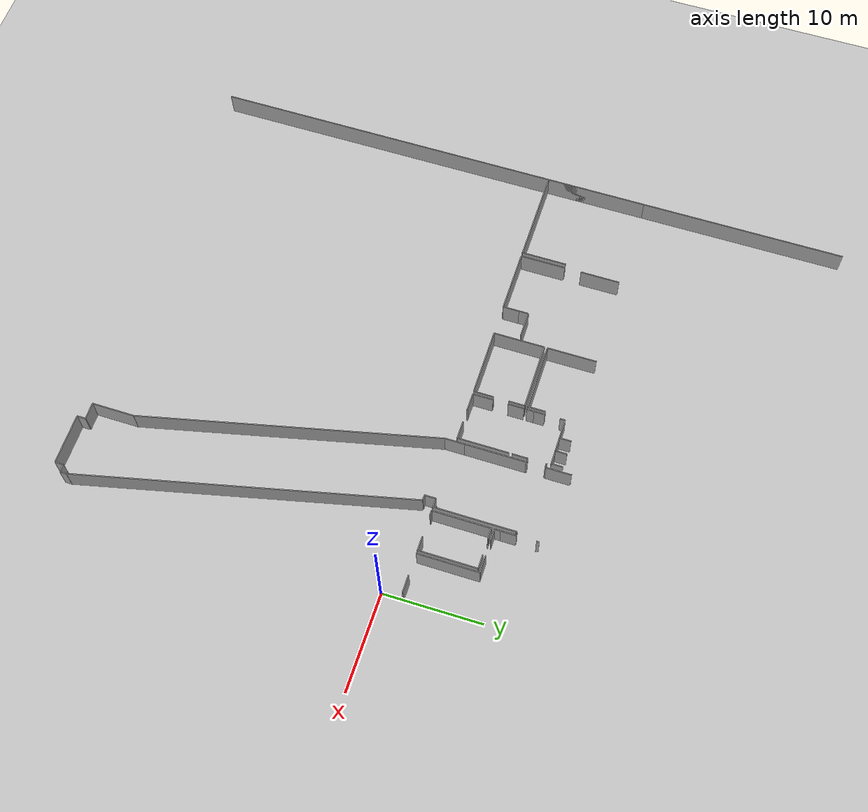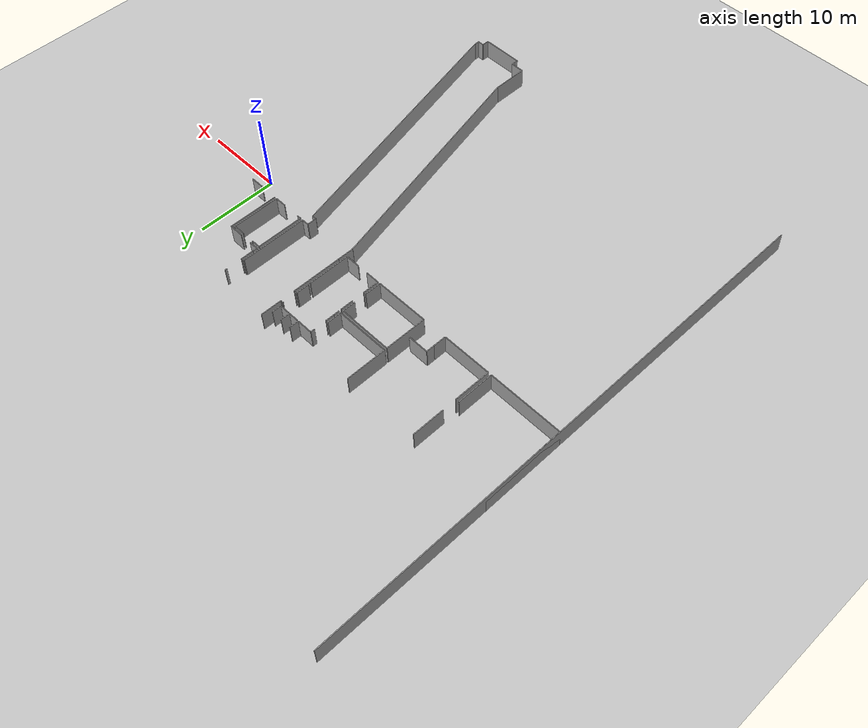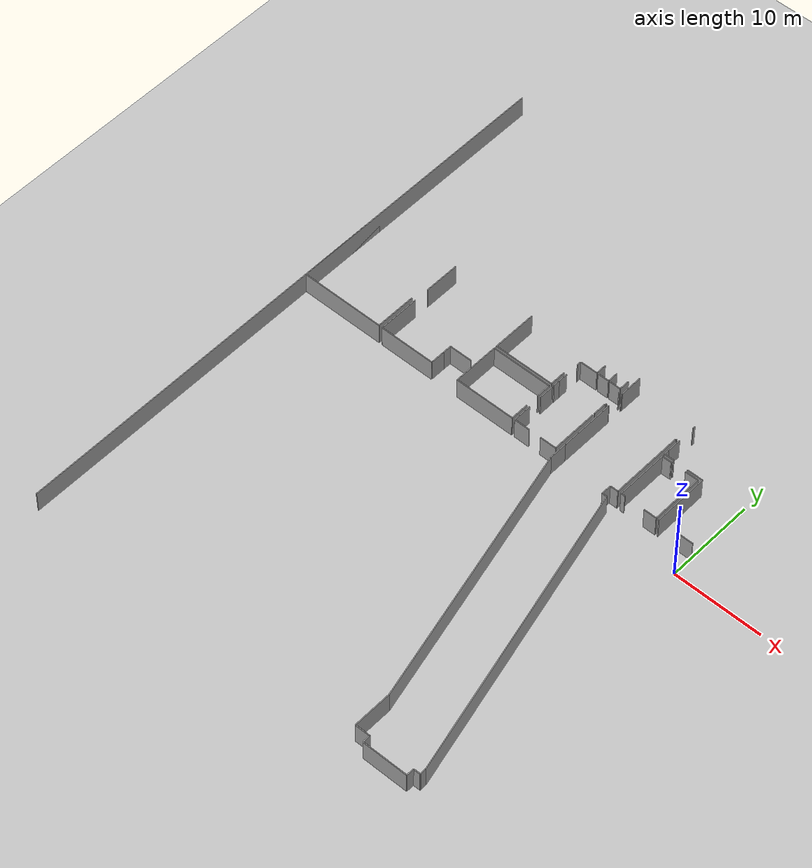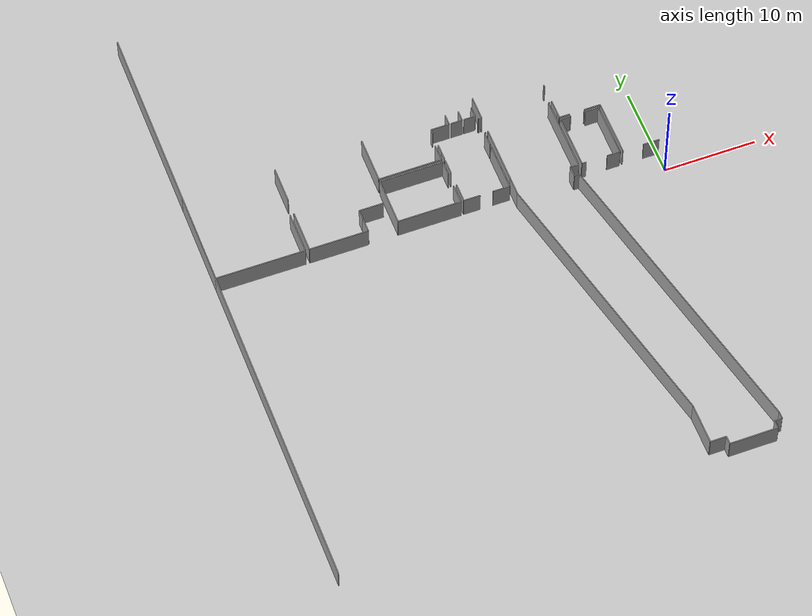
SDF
<sdf version="1.6">
 <world name="default">
  <model name="ground_plane">
   <static>1</static>
   <link name="link">
    <collision name="collision">
     <geometry><plane><normal>0 0 1</normal><size>100 100</size></plane></geometry>
     <surface><friction><ode><mu>100</mu><mu2>50</mu2></ode></friction></surface>
    </collision>
    <visual name="visual">
     <cast_shadows>0</cast_shadows>
     <geometry><plane><normal>0 0 1</normal><size>100 100</size></plane></geometry>
     <material>
      <script><uri>file://media/materials/scripts/gazebo.material</uri><name>Gazebo/Grey</name></script>
     </material>
    </visual>
   </link>
  </model>
  <model name="0510032267_A_40_1_101">
   <static>1</static>
   <link name="Wall_44">
    <collision name="Wall_44_Collision">
     <geometry><box><size>10.3564007904 0.1 2.5</size></box></geometry>
     <pose>5.17820039522 0 1.25 0 0 0</pose>
    </collision>
    <visual name="Wall_44_Visual">
     <pose>5.17820039522 0 1.25 0 0 0</pose>
     <geometry><box><size>10.3564007904 0.1 2.5</size></box></geometry>
     <material>
      <script><uri>file://media/materials/scripts/gazebo.material</uri><name>Gazebo/Grey</name></script>
      <ambient>1 1 1 1</ambient>
     </material>
    </visual>
    <pose>0.0 -31.4094002376 0 0 0 1.57079632679</pose>
   </link>
   <link name="Wall_49">
    <collision name="Wall_49_Collision">
     <geometry><box><size>4.60531582994 0.1 2.5</size></box></geometry>
     <pose>2.30265791497 0 1.25 0 0 0</pose>
    </collision>
    <visual name="Wall_49_Visual">
     <pose>2.30265791497 0 1.25 0 0 0</pose>
     <geometry><box><size>4.60531582994 0.1 2.5</size></box></geometry>
     <material>
      <script><uri>file://media/materials/scripts/gazebo.material</uri><name>Gazebo/Grey</name></script>
      <ambient>1 1 1 1</ambient>
     </material>
    </visual>
    <pose>9.50317386691 -26.8372527466 0 0 0 -1.57079632679</pose>
   </link>
   <link name="Wall_50">
    <collision name="Wall_50_Collision">
     <geometry><box><size>9.50323174943 0.1 2.5</size></box></geometry>
     <pose>4.75161587471 0 1.25 0 0 0</pose>
    </collision>
    <visual name="Wall_50_Visual">
     <pose>4.75161587471 0 1.25 0 0 0</pose>
     <geometry><box><size>9.50323174943 0.1 2.5</size></box></geometry>
     <material>
      <script><uri>file://media/materials/scripts/gazebo.material</uri><name>Gazebo/Grey</name></script>
      <ambient>1 1 1 1</ambient>
     </material>
    </visual>
    <pose>9.50317386691 -31.4425685765 0 0 0 3.13810242973</pose>
   </link>
   <link name="Wall_51">
    <collision name="Wall_51_Collision">
     <geometry><box><size>4.62577599299 0.1 2.5</size></box></geometry>
     <pose>2.31288799649 0 1.25 0 0 0</pose>
    </collision>
    <visual name="Wall_51_Visual">
     <pose>2.31288799649 0 1.25 0 0 0</pose>
     <geometry><box><size>4.62577599299 0.1 2.5</size></box></geometry>
     <material>
      <script><uri>file://media/materials/scripts/gazebo.material</uri><name>Gazebo/Grey</name></script>
      <ambient>1 1 1 1</ambient>
     </material>
    </visual>
    <pose>9.92864359286 -31.4496851549 0 0 0 1.57079632679</pose>
   </link>
   <link name="Wall_52">
    <collision name="Wall_52_Collision">
     <geometry><box><size>4.02874589367 0.1 2.5</size></box></geometry>
     <pose>2.01437294684 0 1.25 0 0 0</pose>
    </collision>
    <visual name="Wall_52_Visual">
     <pose>2.01437294684 0 1.25 0 0 0</pose>
     <geometry><box><size>4.02874589367 0.1 2.5</size></box></geometry>
     <material>
      <script><uri>file://media/materials/scripts/gazebo.material</uri><name>Gazebo/Grey</name></script>
      <ambient>1 1 1 1</ambient>
     </material>
    </visual>
    <pose>9.92864359286 -25.0924202085 0 0 0 1.57079632679</pose>
   </link>
   <link name="Wall_55">
    <collision name="Wall_55_Collision">
     <geometry><box><size>2.58751167564 0.1 2.5</size></box></geometry>
     <pose>1.29375583782 0 1.25 0 0 0</pose>
    </collision>
    <visual name="Wall_55_Visual">
     <pose>1.29375583782 0 1.25 0 0 0</pose>
     <geometry><box><size>2.58751167564 0.1 2.5</size></box></geometry>
     <material>
      <script><uri>file://media/materials/scripts/gazebo.material</uri><name>Gazebo/Grey</name></script>
      <ambient>1 1 1 1</ambient>
     </material>
    </visual>
    <pose>18.8159792603 -28.8331988385 0 0 0 3.14159265359</pose>
   </link>
   <link name="Wall_56">
    <collision name="Wall_56_Collision">
     <geometry><box><size>0.972937939623 0.1 2.5</size></box></geometry>
     <pose>0.486468969812 0 1.25 0 0 0</pose>
    </collision>
    <visual name="Wall_56_Visual">
     <pose>0.486468969812 0 1.25 0 0 0</pose>
     <geometry><box><size>0.972937939623 0.1 2.5</size></box></geometry>
     <material>
      <script><uri>file://media/materials/scripts/gazebo.material</uri><name>Gazebo/Grey</name></script>
      <ambient>1 1 1 1</ambient>
     </material>
    </visual>
    <pose>16.2284675846 -28.8331988385 0 0 0 -1.57079632679</pose>
   </link>
   <link name="Wall_57">
    <collision name="Wall_57_Collision">
     <geometry><box><size>1.65536698035 0.1 2.5</size></box></geometry>
     <pose>0.827683490173 0 1.25 0 0 0</pose>
    </collision>
    <visual name="Wall_57_Visual">
     <pose>0.827683490173 0 1.25 0 0 0</pose>
     <geometry><box><size>1.65536698035 0.1 2.5</size></box></geometry>
     <material>
      <script><uri>file://media/materials/scripts/gazebo.material</uri><name>Gazebo/Grey</name></script>
      <ambient>1 1 1 1</ambient>
     </material>
    </visual>
    <pose>16.2284675846 -29.8061367781 0 0 0 -1.57079632679</pose>
   </link>
   <link name="Wall_58">
    <collision name="Wall_58_Collision">
     <geometry><box><size>6.29983507773 0.1 2.5</size></box></geometry>
     <pose>3.14991753887 0 1.25 0 0 0</pose>
    </collision>
    <visual name="Wall_58_Visual">
     <pose>3.14991753887 0 1.25 0 0 0</pose>
     <geometry><box><size>6.29983507773 0.1 2.5</size></box></geometry>
     <material>
      <script><uri>file://media/materials/scripts/gazebo.material</uri><name>Gazebo/Grey</name></script>
      <ambient>1 1 1 1</ambient>
     </material>
    </visual>
    <pose>16.2284675846 -31.4615037584 0 0 0 3.13971663457</pose>
   </link>
   <link name="Wall_106">
    <collision name="Wall_106_Collision">
     <geometry><box><size>5.06077685079 0.1 2.5</size></box></geometry>
     <pose>2.53038842539 0 1.25 0 0 0</pose>
    </collision>
    <visual name="Wall_106_Visual">
     <pose>2.53038842539 0 1.25 0 0 0</pose>
     <geometry><box><size>5.06077685079 0.1 2.5</size></box></geometry>
     <material>
      <script><uri>file://media/materials/scripts/gazebo.material</uri><name>Gazebo/Grey</name></script>
      <ambient>1 1 1 1</ambient>
     </material>
    </visual>
    <pose>19.4179655481 -25.9085392587 0 0 0 1.57079632679</pose>
   </link>
   <link name="Wall_109">
    <collision name="Wall_109_Collision">
     <geometry><box><size>1.79947769397 0.1 2.5</size></box></geometry>
     <pose>0.899738846987 0 1.25 0 0 0</pose>
    </collision>
    <visual name="Wall_109_Visual">
     <pose>0.899738846987 0 1.25 0 0 0</pose>
     <geometry><box><size>1.79947769397 0.1 2.5</size></box></geometry>
     <material>
      <script><uri>file://media/materials/scripts/gazebo.material</uri><name>Gazebo/Grey</name></script>
      <ambient>1 1 1 1</ambient>
     </material>
    </visual>
    <pose>26.2285311255 -24.0944471626 0 0 0 -1.57079632679</pose>
   </link>
   <link name="Wall_110">
    <collision name="Wall_110_Collision">
     <geometry><box><size>6.81058125745 0.1 2.5</size></box></geometry>
     <pose>3.40529062872 0 1.25 0 0 0</pose>
    </collision>
    <visual name="Wall_110_Visual">
     <pose>3.40529062872 0 1.25 0 0 0</pose>
     <geometry><box><size>6.81058125745 0.1 2.5</size></box></geometry>
     <material>
      <script><uri>file://media/materials/scripts/gazebo.material</uri><name>Gazebo/Grey</name></script>
      <ambient>1 1 1 1</ambient>
     </material>
    </visual>
    <pose>26.2285311255 -25.8939248566 0 0 0 -3.13944681422</pose>
   </link>
   <link name="Wall_111">
    <collision name="Wall_111_Collision">
     <geometry><box><size>5.22509356394 0.1 2.5</size></box></geometry>
     <pose>2.61254678197 0 1.25 0 0 0</pose>
    </collision>
    <visual name="Wall_111_Visual">
     <pose>2.61254678197 0 1.25 0 0 0</pose>
     <geometry><box><size>5.22509356394 0.1 2.5</size></box></geometry>
     <material>
      <script><uri>file://media/materials/scripts/gazebo.material</uri><name>Gazebo/Grey</name></script>
      <ambient>1 1 1 1</ambient>
     </material>
    </visual>
    <pose>19.4166947306 -31.4437123123 0 0 0 1.57079632679</pose>
   </link>
   <link name="Wall_112">
    <collision name="Wall_112_Collision">
     <geometry><box><size>6.8174279923 0.1 2.5</size></box></geometry>
     <pose>3.40871399615 0 1.25 0 0 0</pose>
    </collision>
    <visual name="Wall_112_Visual">
     <pose>3.40871399615 0 1.25 0 0 0</pose>
     <geometry><box><size>6.8174279923 0.1 2.5</size></box></geometry>
     <material>
      <script><uri>file://media/materials/scripts/gazebo.material</uri><name>Gazebo/Grey</name></script>
      <ambient>1 1 1 1</ambient>
     </material>
    </visual>
    <pose>19.4166947306 -26.2186187484 0 0 0 0.0</pose>
   </link>
   <link name="Wall_113">
    <collision name="Wall_113_Collision">
     <geometry><box><size>1.62092782392 0.1 2.5</size></box></geometry>
     <pose>0.810463911958 0 1.25 0 0 0</pose>
    </collision>
    <visual name="Wall_113_Visual">
     <pose>0.810463911958 0 1.25 0 0 0</pose>
     <geometry><box><size>1.62092782392 0.1 2.5</size></box></geometry>
     <material>
      <script><uri>file://media/materials/scripts/gazebo.material</uri><name>Gazebo/Grey</name></script>
      <ambient>1 1 1 1</ambient>
     </material>
    </visual>
    <pose>26.2341227229 -26.2186187484 0 0 0 -1.57079632679</pose>
   </link>
   <link name="Wall_114">
    <collision name="Wall_114_Collision">
     <geometry><box><size>2.05834323512 0.1 2.5</size></box></geometry>
     <pose>1.02917161756 0 1.25 0 0 0</pose>
    </collision>
    <visual name="Wall_114_Visual">
     <pose>1.02917161756 0 1.25 0 0 0</pose>
     <geometry><box><size>2.05834323512 0.1 2.5</size></box></geometry>
     <material>
      <script><uri>file://media/materials/scripts/gazebo.material</uri><name>Gazebo/Grey</name></script>
      <ambient>1 1 1 1</ambient>
     </material>
    </visual>
    <pose>26.2341227229 -29.3838440961 0 0 0 -1.57079632679</pose>
   </link>
   <link name="Wall_115">
    <collision name="Wall_115_Collision">
     <geometry><box><size>6.81742816286 0.1 2.5</size></box></geometry>
     <pose>3.40871408143 0 1.25 0 0 0</pose>
    </collision>
    <visual name="Wall_115_Visual">
     <pose>3.40871408143 0 1.25 0 0 0</pose>
     <geometry><box><size>6.81742816286 0.1 2.5</size></box></geometry>
     <material>
      <script><uri>file://media/materials/scripts/gazebo.material</uri><name>Gazebo/Grey</name></script>
      <ambient>1 1 1 1</ambient>
     </material>
    </visual>
    <pose>26.2341227229 -31.4421873312 0 0 0 -3.14136896497</pose>
   </link>
   <link name="Wall_116">
    <collision name="Wall_116_Collision">
     <geometry><box><size>1.07536583661 0.1 2.5</size></box></geometry>
     <pose>0.537682918305 0 1.25 0 0 0</pose>
    </collision>
    <visual name="Wall_116_Visual">
     <pose>0.537682918305 0 1.25 0 0 0</pose>
     <geometry><box><size>1.07536583661 0.1 2.5</size></box></geometry>
     <material>
      <script><uri>file://media/materials/scripts/gazebo.material</uri><name>Gazebo/Grey</name></script>
      <ambient>1 1 1 1</ambient>
     </material>
    </visual>
    <pose>26.5386106151 -25.1673984458 0 0 0 1.57079632679</pose>
   </link>
   <link name="Wall_117">
    <collision name="Wall_117_Collision">
     <geometry><box><size>0.506420805825 0.1 2.5</size></box></geometry>
     <pose>0.253210402913 0 1.25 0 0 0</pose>
    </collision>
    <visual name="Wall_117_Visual">
     <pose>0.253210402913 0 1.25 0 0 0</pose>
     <geometry><box><size>0.506420805825 0.1 2.5</size></box></geometry>
     <material>
      <script><uri>file://media/materials/scripts/gazebo.material</uri><name>Gazebo/Grey</name></script>
      <ambient>1 1 1 1</ambient>
     </material>
    </visual>
    <pose>26.5386106151 -22.5481163306 0 0 0 1.57079632679</pose>
   </link>
   <link name="Wall_118">
    <collision name="Wall_118_Collision">
     <geometry><box><size>1.98705036885 0.1 2.5</size></box></geometry>
     <pose>0.993525184427 0 1.25 0 0 0</pose>
    </collision>
    <visual name="Wall_118_Visual">
     <pose>0.993525184427 0 1.25 0 0 0</pose>
     <geometry><box><size>1.98705036885 0.1 2.5</size></box></geometry>
     <material>
      <script><uri>file://media/materials/scripts/gazebo.material</uri><name>Gazebo/Grey</name></script>
      <ambient>1 1 1 1</ambient>
     </material>
    </visual>
    <pose>26.5386106151 -22.0416955248 0 0 0 0.0</pose>
   </link>
   <link name="Wall_119">
    <collision name="Wall_119_Collision">
     <geometry><box><size>1.1753791802 0.1 2.5</size></box></geometry>
     <pose>0.587689590098 0 1.25 0 0 0</pose>
    </collision>
    <visual name="Wall_119_Visual">
     <pose>0.587689590098 0 1.25 0 0 0</pose>
     <geometry><box><size>1.1753791802 0.1 2.5</size></box></geometry>
     <material>
      <script><uri>file://media/materials/scripts/gazebo.material</uri><name>Gazebo/Grey</name></script>
      <ambient>1 1 1 1</ambient>
     </material>
    </visual>
    <pose>28.525660984 -22.0416955248 0 0 0 1.57079632679</pose>
   </link>
   <link name="Wall_122">
    <collision name="Wall_122_Collision">
     <geometry><box><size>1.26039687633 0.1 2.5</size></box></geometry>
     <pose>0.630198438165 0 1.25 0 0 0</pose>
    </collision>
    <visual name="Wall_122_Visual">
     <pose>0.630198438165 0 1.25 0 0 0</pose>
     <geometry><box><size>1.26039687633 0.1 2.5</size></box></geometry>
     <material>
      <script><uri>file://media/materials/scripts/gazebo.material</uri><name>Gazebo/Grey</name></script>
      <ambient>1 1 1 1</ambient>
     </material>
    </visual>
    <pose>28.6960776215 -22.0419496883 0 0 0 0.0</pose>
   </link>
   <link name="Wall_123">
    <collision name="Wall_123_Collision">
     <geometry><box><size>1.17614167074 0.1 2.5</size></box></geometry>
     <pose>0.588070835372 0 1.25 0 0 0</pose>
    </collision>
    <visual name="Wall_123_Visual">
     <pose>0.588070835372 0 1.25 0 0 0</pose>
     <geometry><box><size>1.17614167074 0.1 2.5</size></box></geometry>
     <material>
      <script><uri>file://media/materials/scripts/gazebo.material</uri><name>Gazebo/Grey</name></script>
      <ambient>1 1 1 1</ambient>
     </material>
    </visual>
    <pose>29.9564744979 -22.0419496883 0 0 0 1.57079632679</pose>
   </link>
   <link name="Wall_126">
    <collision name="Wall_126_Collision">
     <geometry><box><size>1.25633026007 0.1 2.5</size></box></geometry>
     <pose>0.628165130036 0 1.25 0 0 0</pose>
    </collision>
    <visual name="Wall_126_Visual">
     <pose>0.628165130036 0 1.25 0 0 0</pose>
     <geometry><box><size>1.25633026007 0.1 2.5</size></box></geometry>
     <material>
      <script><uri>file://media/materials/scripts/gazebo.material</uri><name>Gazebo/Grey</name></script>
      <ambient>1 1 1 1</ambient>
     </material>
    </visual>
    <pose>30.1186308211 -22.0390268079 0 0 0 0.0</pose>
   </link>
   <link name="Wall_127">
    <collision name="Wall_127_Collision">
     <geometry><box><size>1.17042299163 0.1 2.5</size></box></geometry>
     <pose>0.585211495816 0 1.25 0 0 0</pose>
    </collision>
    <visual name="Wall_127_Visual">
     <pose>0.585211495816 0 1.25 0 0 0</pose>
     <geometry><box><size>1.17042299163 0.1 2.5</size></box></geometry>
     <material>
      <script><uri>file://media/materials/scripts/gazebo.material</uri><name>Gazebo/Grey</name></script>
      <ambient>1 1 1 1</ambient>
     </material>
    </visual>
    <pose>31.3749610812 -22.0390268079 0 0 0 1.57079632679</pose>
   </link>
   <link name="Wall_130">
    <collision name="Wall_130_Collision">
     <geometry><box><size>0.0986154442461 0.1 2.5</size></box></geometry>
     <pose>0.049307722123 0 1.25 0 0 0</pose>
    </collision>
    <visual name="Wall_130_Visual">
     <pose>0.049307722123 0 1.25 0 0 0</pose>
     <geometry><box><size>0.0986154442461 0.1 2.5</size></box></geometry>
     <material>
      <script><uri>file://media/materials/scripts/gazebo.material</uri><name>Gazebo/Grey</name></script>
      <ambient>1 1 1 1</ambient>
     </material>
    </visual>
    <pose>31.5231384111 -22.4411134904 0 0 0 0.0</pose>
   </link>
   <link name="Wall_131">
    <collision name="Wall_131_Collision">
     <geometry><box><size>0.103698714568 0.1 2.5</size></box></geometry>
     <pose>0.051849357284 0 1.25 0 0 0</pose>
    </collision>
    <visual name="Wall_131_Visual">
     <pose>0.051849357284 0 1.25 0 0 0</pose>
     <geometry><box><size>0.103698714568 0.1 2.5</size></box></geometry>
     <material>
      <script><uri>file://media/materials/scripts/gazebo.material</uri><name>Gazebo/Grey</name></script>
      <ambient>1 1 1 1</ambient>
     </material>
    </visual>
    <pose>31.6217538553 -22.4411134904 0 0 0 -1.57079632679</pose>
   </link>
   <link name="Wall_132">
    <collision name="Wall_132_Collision">
     <geometry><box><size>0.0928967651339 0.1 2.5</size></box></geometry>
     <pose>0.0464483825669 0 1.25 0 0 0</pose>
    </collision>
    <visual name="Wall_132_Visual">
     <pose>0.0464483825669 0 1.25 0 0 0</pose>
     <geometry><box><size>0.0928967651339 0.1 2.5</size></box></geometry>
     <material>
      <script><uri>file://media/materials/scripts/gazebo.material</uri><name>Gazebo/Grey</name></script>
      <ambient>1 1 1 1</ambient>
     </material>
    </visual>
    <pose>31.6217538553 -24.2848156361 0 0 0 -1.57079632679</pose>
   </link>
   <link name="Wall_133">
    <collision name="Wall_133_Collision">
     <geometry><box><size>0.0901009664568 0.1 2.5</size></box></geometry>
     <pose>0.0450504832284 0 1.25 0 0 0</pose>
    </collision>
    <visual name="Wall_133_Visual">
     <pose>0.0450504832284 0 1.25 0 0 0</pose>
     <geometry><box><size>0.0901009664568 0.1 2.5</size></box></geometry>
     <material>
      <script><uri>file://media/materials/scripts/gazebo.material</uri><name>Gazebo/Grey</name></script>
      <ambient>1 1 1 1</ambient>
     </material>
    </visual>
    <pose>31.6217538553 -24.3777124013 0 0 0 3.14159265359</pose>
   </link>
   <link name="Wall_134">
    <collision name="Wall_134_Collision">
     <geometry><box><size>1.53641845481 0.1 2.5</size></box></geometry>
     <pose>0.768209227406 0 1.25 0 0 0</pose>
    </collision>
    <visual name="Wall_134_Visual">
     <pose>0.768209227406 0 1.25 0 0 0</pose>
     <geometry><box><size>1.53641845481 0.1 2.5</size></box></geometry>
     <material>
      <script><uri>file://media/materials/scripts/gazebo.material</uri><name>Gazebo/Grey</name></script>
      <ambient>1 1 1 1</ambient>
     </material>
    </visual>
    <pose>31.5316528889 -24.3777124013 0 0 0 -1.57079632679</pose>
   </link>
   <link name="Wall_135">
    <collision name="Wall_135_Collision">
     <geometry><box><size>0.746733718744 0.1 2.5</size></box></geometry>
     <pose>0.373366859372 0 1.25 0 0 0</pose>
    </collision>
    <visual name="Wall_135_Visual">
     <pose>0.373366859372 0 1.25 0 0 0</pose>
     <geometry><box><size>0.746733718744 0.1 2.5</size></box></geometry>
     <material>
      <script><uri>file://media/materials/scripts/gazebo.material</uri><name>Gazebo/Grey</name></script>
      <ambient>1 1 1 1</ambient>
     </material>
    </visual>
    <pose>26.5400085145 -25.9141308561 0 0 0 1.57266834639</pose>
   </link>
   <link name="Wall_136">
    <collision name="Wall_136_Collision">
     <geometry><box><size>2.05897864391 0.1 2.5</size></box></geometry>
     <pose>1.02948932196 0 1.25 0 0 0</pose>
    </collision>
    <visual name="Wall_136_Visual">
     <pose>1.02948932196 0 1.25 0 0 0</pose>
     <geometry><box><size>2.05897864391 0.1 2.5</size></box></geometry>
     <material>
      <script><uri>file://media/materials/scripts/gazebo.material</uri><name>Gazebo/Grey</name></script>
      <ambient>1 1 1 1</ambient>
     </material>
    </visual>
    <pose>26.5398814327 -31.4198209418 0 0 0 1.57079632679</pose>
   </link>
   <link name="Wall_137">
    <collision name="Wall_137_Collision">
     <geometry><box><size>1.62245280501 0.1 2.5</size></box></geometry>
     <pose>0.811226402506 0 1.25 0 0 0</pose>
    </collision>
    <visual name="Wall_137_Visual">
     <pose>0.811226402506 0 1.25 0 0 0</pose>
     <geometry><box><size>1.62245280501 0.1 2.5</size></box></geometry>
     <material>
      <script><uri>file://media/materials/scripts/gazebo.material</uri><name>Gazebo/Grey</name></script>
      <ambient>1 1 1 1</ambient>
     </material>
    </visual>
    <pose>26.5398814327 -27.8146385477 0 0 0 1.57079632679</pose>
   </link>
   <link name="Wall_138">
    <collision name="Wall_138_Collision">
     <geometry><box><size>5.23970796612 0.1 2.5</size></box></geometry>
     <pose>2.61985398306 0 1.25 0 0 0</pose>
    </collision>
    <visual name="Wall_138_Visual">
     <pose>2.61985398306 0 1.25 0 0 0</pose>
     <geometry><box><size>5.23970796612 0.1 2.5</size></box></geometry>
     <material>
      <script><uri>file://media/materials/scripts/gazebo.material</uri><name>Gazebo/Grey</name></script>
      <ambient>1 1 1 1</ambient>
     </material>
    </visual>
    <pose>31.5302549895 -26.1921857427 0 0 0 -1.57079632679</pose>
   </link>
   <link name="Wall_139">
    <collision name="Wall_139_Collision">
     <geometry><box><size>1.83760222139 0.1 2.5</size></box></geometry>
     <pose>0.918801110695 0 1.25 0 0 0</pose>
    </collision>
    <visual name="Wall_139_Visual">
     <pose>0.918801110695 0 1.25 0 0 0</pose>
     <geometry><box><size>1.83760222139 0.1 2.5</size></box></geometry>
     <material>
      <script><uri>file://media/materials/scripts/gazebo.material</uri><name>Gazebo/Grey</name></script>
      <ambient>1 1 1 1</ambient>
     </material>
    </visual>
    <pose>31.5302549895 -31.4318937088 0 0 0 3.14159265359</pose>
   </link>
   <link name="Wall_140">
    <collision name="Wall_140_Collision">
     <geometry><box><size>1.79329132633 0.1 2.5</size></box></geometry>
     <pose>0.896645663167 0 1.25 0 0 0</pose>
    </collision>
    <visual name="Wall_140_Visual">
     <pose>0.896645663167 0 1.25 0 0 0</pose>
     <geometry><box><size>1.79329132633 0.1 2.5</size></box></geometry>
     <material>
      <script><uri>file://media/materials/scripts/gazebo.material</uri><name>Gazebo/Grey</name></script>
      <ambient>1 1 1 1</ambient>
     </material>
    </visual>
    <pose>28.3331321205 -31.4318937088 0 0 0 3.13486041882</pose>
   </link>
   <link name="Wall_141">
    <collision name="Wall_141_Collision">
     <geometry><box><size>6.14859669969 0.1 2.5</size></box></geometry>
     <pose>3.07429834984 0 1.25 0 0 0</pose>
    </collision>
    <visual name="Wall_141_Visual">
     <pose>3.07429834984 0 1.25 0 0 0</pose>
     <geometry><box><size>6.14859669969 0.1 2.5</size></box></geometry>
     <material>
      <script><uri>file://media/materials/scripts/gazebo.material</uri><name>Gazebo/Grey</name></script>
      <ambient>1 1 1 1</ambient>
     </material>
    </visual>
    <pose>31.9264959111 -30.5486754904 0 0 0 1.57079632679</pose>
   </link>
   <link name="Wall_142">
    <collision name="Wall_142_Collision">
     <geometry><box><size>0.0302454584157 0.1 2.5</size></box></geometry>
     <pose>0.0151227292078 0 1.25 0 0 0</pose>
    </collision>
    <visual name="Wall_142_Visual">
     <pose>0.0151227292078 0 1.25 0 0 0</pose>
     <geometry><box><size>0.0302454584157 0.1 2.5</size></box></geometry>
     <material>
      <script><uri>file://media/materials/scripts/gazebo.material</uri><name>Gazebo/Grey</name></script>
      <ambient>1 1 1 1</ambient>
     </material>
    </visual>
    <pose>31.9264959111 -24.4000787907 0 0 0 3.14159265359</pose>
   </link>
   <link name="Wall_143">
    <collision name="Wall_143_Collision">
     <geometry><box><size>0.131910864855 0.1 2.5</size></box></geometry>
     <pose>0.0659554324275 0 1.25 0 0 0</pose>
    </collision>
    <visual name="Wall_143_Visual">
     <pose>0.0659554324275 0 1.25 0 0 0</pose>
     <geometry><box><size>0.131910864855 0.1 2.5</size></box></geometry>
     <material>
      <script><uri>file://media/materials/scripts/gazebo.material</uri><name>Gazebo/Grey</name></script>
      <ambient>1 1 1 1</ambient>
     </material>
    </visual>
    <pose>31.8962504527 -24.4000787907 0 0 0 1.57079632679</pose>
   </link>
   <link name="Wall_144">
    <collision name="Wall_144_Collision">
     <geometry><box><size>0.103825796326 0.1 2.5</size></box></geometry>
     <pose>0.051912898163 0 1.25 0 0 0</pose>
    </collision>
    <visual name="Wall_144_Visual">
     <pose>0.051912898163 0 1.25 0 0 0</pose>
     <geometry><box><size>0.103825796326 0.1 2.5</size></box></geometry>
     <material>
      <script><uri>file://media/materials/scripts/gazebo.material</uri><name>Gazebo/Grey</name></script>
      <ambient>1 1 1 1</ambient>
     </material>
    </visual>
    <pose>31.8962504527 -22.5202854256 0 0 0 1.57079632679</pose>
   </link>
   <link name="Wall_145">
    <collision name="Wall_145_Collision">
     <geometry><box><size>0.023255961723 0.1 2.5</size></box></geometry>
     <pose>0.0116279808615 0 1.25 0 0 0</pose>
    </collision>
    <visual name="Wall_145_Visual">
     <pose>0.0116279808615 0 1.25 0 0 0</pose>
     <geometry><box><size>0.023255961723 0.1 2.5</size></box></geometry>
     <material>
      <script><uri>file://media/materials/scripts/gazebo.material</uri><name>Gazebo/Grey</name></script>
      <ambient>1 1 1 1</ambient>
     </material>
    </visual>
    <pose>31.8962504527 -22.4164596293 0 0 0 0.0</pose>
   </link>
   <link name="Wall_146">
    <collision name="Wall_146_Collision">
     <geometry><box><size>2.57238894643 0.1 2.5</size></box></geometry>
     <pose>1.28619447321 0 1.25 0 0 0</pose>
    </collision>
    <visual name="Wall_146_Visual">
     <pose>1.28619447321 0 1.25 0 0 0</pose>
     <geometry><box><size>2.57238894643 0.1 2.5</size></box></geometry>
     <material>
      <script><uri>file://media/materials/scripts/gazebo.material</uri><name>Gazebo/Grey</name></script>
      <ambient>1 1 1 1</ambient>
     </material>
    </visual>
    <pose>31.9195064145 -22.4164596293 0 0 0 1.57079632679</pose>
   </link>
   <link name="Wall_152">
    <collision name="Wall_152_Collision">
     <geometry><box><size>0.0955654820529 0.1 2.5</size></box></geometry>
     <pose>0.0477827410264 0 1.25 0 0 0</pose>
    </collision>
    <visual name="Wall_152_Visual">
     <pose>0.0477827410264 0 1.25 0 0 0</pose>
     <geometry><box><size>0.0955654820529 0.1 2.5</size></box></geometry>
     <material>
      <script><uri>file://media/materials/scripts/gazebo.material</uri><name>Gazebo/Grey</name></script>
      <ambient>1 1 1 1</ambient>
     </material>
    </visual>
    <pose>39.1189421714 -23.1024469593 0 0 0 -1.57079632679</pose>
   </link>
   <link name="Wall_153">
    <collision name="Wall_153_Collision">
     <geometry><box><size>0.0743428284587 0.1 2.5</size></box></geometry>
     <pose>0.0371714142293 0 1.25 0 0 0</pose>
    </collision>
    <visual name="Wall_153_Visual">
     <pose>0.0371714142293 0 1.25 0 0 0</pose>
     <geometry><box><size>0.0743428284587 0.1 2.5</size></box></geometry>
     <material>
      <script><uri>file://media/materials/scripts/gazebo.material</uri><name>Gazebo/Grey</name></script>
      <ambient>1 1 1 1</ambient>
     </material>
    </visual>
    <pose>39.1189421714 -23.1980124413 0 0 0 3.14159265359</pose>
   </link>
   <link name="Wall_154">
    <collision name="Wall_154_Collision">
     <geometry><box><size>8.23388126751 0.1 2.5</size></box></geometry>
     <pose>4.11694063376 0 1.25 0 0 0</pose>
    </collision>
    <visual name="Wall_154_Visual">
     <pose>4.11694063376 0 1.25 0 0 0</pose>
     <geometry><box><size>8.23388126751 0.1 2.5</size></box></geometry>
     <material>
      <script><uri>file://media/materials/scripts/gazebo.material</uri><name>Gazebo/Grey</name></script>
      <ambient>1 1 1 1</ambient>
     </material>
    </visual>
    <pose>39.044599343 -23.1980124413 0 0 0 -1.57079632679</pose>
   </link>
   <link name="Wall_155">
    <collision name="Wall_155_Collision">
     <geometry><box><size>0.907109588954 0.1 2.5</size></box></geometry>
     <pose>0.453554794477 0 1.25 0 0 0</pose>
    </collision>
    <visual name="Wall_155_Visual">
     <pose>0.453554794477 0 1.25 0 0 0</pose>
     <geometry><box><size>0.907109588954 0.1 2.5</size></box></geometry>
     <material>
      <script><uri>file://media/materials/scripts/gazebo.material</uri><name>Gazebo/Grey</name></script>
      <ambient>1 1 1 1</ambient>
     </material>
    </visual>
    <pose>39.044599343 -31.4318937088 0 0 0 3.14159265359</pose>
   </link>
   <link name="Wall_156">
    <collision name="Wall_156_Collision">
     <geometry><box><size>1.14106710552 0.1 2.5</size></box></geometry>
     <pose>0.570533552761 0 1.25 0 0 0</pose>
    </collision>
    <visual name="Wall_156_Visual">
     <pose>0.570533552761 0 1.25 0 0 0</pose>
     <geometry><box><size>1.14106710552 0.1 2.5</size></box></geometry>
     <material>
      <script><uri>file://media/materials/scripts/gazebo.material</uri><name>Gazebo/Grey</name></script>
      <ambient>1 1 1 1</ambient>
     </material>
    </visual>
    <pose>38.137489754 -31.4318937088 0 0 0 -1.57079632679</pose>
   </link>
   <link name="Wall_157">
    <collision name="Wall_157_Collision">
     <geometry><box><size>0.545434905546 0.1 2.5</size></box></geometry>
     <pose>0.272717452773 0 1.25 0 0 0</pose>
    </collision>
    <visual name="Wall_157_Visual">
     <pose>0.272717452773 0 1.25 0 0 0</pose>
     <geometry><box><size>0.545434905546 0.1 2.5</size></box></geometry>
     <material>
      <script><uri>file://media/materials/scripts/gazebo.material</uri><name>Gazebo/Grey</name></script>
      <ambient>1 1 1 1</ambient>
     </material>
    </visual>
    <pose>38.137489754 -32.5729608143 0 0 0 0.0</pose>
   </link>
   <link name="Wall_158">
    <collision name="Wall_158_Collision">
     <geometry><box><size>34.0792512906 0.1 2.5</size></box></geometry>
     <pose>17.0396256453 0 1.25 0 0 0</pose>
    </collision>
    <visual name="Wall_158_Visual">
     <pose>17.0396256453 0 1.25 0 0 0</pose>
     <geometry><box><size>34.0792512906 0.1 2.5</size></box></geometry>
     <material>
      <script><uri>file://media/materials/scripts/gazebo.material</uri><name>Gazebo/Grey</name></script>
      <ambient>1 1 1 1</ambient>
     </material>
    </visual>
    <pose>38.6829246596 -32.5729608143 0 0 0 -1.34243618623</pose>
   </link>
   <link name="Wall_159">
    <collision name="Wall_159_Collision">
     <geometry><box><size>0.69373931719 0.1 2.5</size></box></geometry>
     <pose>0.346869658595 0 1.25 0 0 0</pose>
    </collision>
    <visual name="Wall_159_Visual">
     <pose>0.346869658595 0 1.25 0 0 0</pose>
     <geometry><box><size>0.69373931719 0.1 2.5</size></box></geometry>
     <material>
      <script><uri>file://media/materials/scripts/gazebo.material</uri><name>Gazebo/Grey</name></script>
      <ambient>1 1 1 1</ambient>
     </material>
    </visual>
    <pose>46.3978040272 -65.7674785073 0 0 0 -1.57079632679</pose>
   </link>
   <link name="Wall_160">
    <collision name="Wall_160_Collision">
     <geometry><box><size>0.776723705196 0.1 2.5</size></box></geometry>
     <pose>0.388361852598 0 1.25 0 0 0</pose>
    </collision>
    <visual name="Wall_160_Visual">
     <pose>0.388361852598 0 1.25 0 0 0</pose>
     <geometry><box><size>0.776723705196 0.1 2.5</size></box></geometry>
     <material>
      <script><uri>file://media/materials/scripts/gazebo.material</uri><name>Gazebo/Grey</name></script>
      <ambient>1 1 1 1</ambient>
     </material>
    </visual>
    <pose>46.3978040272 -66.4612178245 0 0 0 3.14159265359</pose>
   </link>
   <link name="Wall_161">
    <collision name="Wall_161_Collision">
     <geometry><box><size>0.864028872975 0.1 2.5</size></box></geometry>
     <pose>0.432014436488 0 1.25 0 0 0</pose>
    </collision>
    <visual name="Wall_161_Visual">
     <pose>0.432014436488 0 1.25 0 0 0</pose>
     <geometry><box><size>0.864028872975 0.1 2.5</size></box></geometry>
     <material>
      <script><uri>file://media/materials/scripts/gazebo.material</uri><name>Gazebo/Grey</name></script>
      <ambient>1 1 1 1</ambient>
     </material>
    </visual>
    <pose>45.621080322 -66.4612178245 0 0 0 -1.57079632679</pose>
   </link>
   <link name="Wall_162">
    <collision name="Wall_162_Collision">
     <geometry><box><size>5.12546146563 0.1 2.5</size></box></geometry>
     <pose>2.56273073282 0 1.25 0 0 0</pose>
    </collision>
    <visual name="Wall_162_Visual">
     <pose>2.56273073282 0 1.25 0 0 0</pose>
     <geometry><box><size>5.12546146563 0.1 2.5</size></box></geometry>
     <material>
      <script><uri>file://media/materials/scripts/gazebo.material</uri><name>Gazebo/Grey</name></script>
      <ambient>1 1 1 1</ambient>
     </material>
    </visual>
    <pose>45.621080322 -67.3252466975 0 0 0 3.14159265359</pose>
   </link>
   <link name="Wall_163">
    <collision name="Wall_163_Collision">
     <geometry><box><size>0.872162105491 0.1 2.5</size></box></geometry>
     <pose>0.436081052745 0 1.25 0 0 0</pose>
    </collision>
    <visual name="Wall_163_Visual">
     <pose>0.436081052745 0 1.25 0 0 0</pose>
     <geometry><box><size>0.872162105491 0.1 2.5</size></box></geometry>
     <material>
      <script><uri>file://media/materials/scripts/gazebo.material</uri><name>Gazebo/Grey</name></script>
      <ambient>1 1 1 1</ambient>
     </material>
    </visual>
    <pose>40.4956188564 -67.3252466975 0 0 0 1.57079632679</pose>
   </link>
   <link name="Wall_164">
    <collision name="Wall_164_Collision">
     <geometry><box><size>1.70175182203 0.1 2.5</size></box></geometry>
     <pose>0.850875911017 0 1.25 0 0 0</pose>
    </collision>
    <visual name="Wall_164_Visual">
     <pose>0.850875911017 0 1.25 0 0 0</pose>
     <geometry><box><size>1.70175182203 0.1 2.5</size></box></geometry>
     <material>
      <script><uri>file://media/materials/scripts/gazebo.material</uri><name>Gazebo/Grey</name></script>
      <ambient>1 1 1 1</ambient>
     </material>
    </visual>
    <pose>40.4956188564 -66.453084592 0 0 0 3.14159265359</pose>
   </link>
   <link name="Wall_165">
    <collision name="Wall_165_Collision">
     <geometry><box><size>4.3418753455 0.1 2.5</size></box></geometry>
     <pose>2.17093767275 0 1.25 0 0 0</pose>
    </collision>
    <visual name="Wall_165_Visual">
     <pose>2.17093767275 0 1.25 0 0 0</pose>
     <geometry><box><size>4.3418753455 0.1 2.5</size></box></geometry>
     <material>
      <script><uri>file://media/materials/scripts/gazebo.material</uri><name>Gazebo/Grey</name></script>
      <ambient>1 1 1 1</ambient>
     </material>
    </visual>
    <pose>38.7938670344 -66.453084592 0 0 0 1.57079632679</pose>
   </link>
   <link name="Wall_166">
    <collision name="Wall_166_Collision">
     <geometry><box><size>30.3540072936 0.1 2.5</size></box></geometry>
     <pose>15.1770036468 0 1.25 0 0 0</pose>
    </collision>
    <visual name="Wall_166_Visual">
     <pose>15.1770036468 0 1.25 0 0 0</pose>
     <geometry><box><size>30.3540072936 0.1 2.5</size></box></geometry>
     <material>
      <script><uri>file://media/materials/scripts/gazebo.material</uri><name>Gazebo/Grey</name></script>
      <ambient>1 1 1 1</ambient>
     </material>
    </visual>
    <pose>38.7938670344 -62.1112092465 0 0 0 1.79897622257</pose>
   </link>
   <link name="Wall_167">
    <collision name="Wall_167_Collision">
     <geometry><box><size>1.99531101093 0.1 2.5</size></box></geometry>
     <pose>0.997655505465 0 1.25 0 0 0</pose>
    </collision>
    <visual name="Wall_167_Visual">
     <pose>0.997655505465 0 1.25 0 0 0</pose>
     <geometry><box><size>1.99531101093 0.1 2.5</size></box></geometry>
     <material>
      <script><uri>file://media/materials/scripts/gazebo.material</uri><name>Gazebo/Grey</name></script>
      <ambient>1 1 1 1</ambient>
     </material>
    </visual>
    <pose>31.927639647 -32.5439861735 0 0 0 1.57136953863</pose>
   </link>
   <link name="Wall_237">
    <collision name="Wall_237_Collision">
     <geometry><box><size>5.86342523462 0.1 2.5</size></box></geometry>
     <pose>2.93171261731 0 1.25 0 0 0</pose>
    </collision>
    <visual name="Wall_237_Visual">
     <pose>2.93171261731 0 1.25 0 0 0</pose>
     <geometry><box><size>5.86342523462 0.1 2.5</size></box></geometry>
     <material>
      <script><uri>file://media/materials/scripts/gazebo.material</uri><name>Gazebo/Grey</name></script>
      <ambient>1 1 1 1</ambient>
     </material>
    </visual>
    <pose>39.4288945793 -31.4303687277 0 0 0 1.57079632679</pose>
   </link>
   <link name="Wall_238">
    <collision name="Wall_238_Collision">
     <geometry><box><size>1.03851212678 0.1 2.5</size></box></geometry>
     <pose>0.519256063388 0 1.25 0 0 0</pose>
    </collision>
    <visual name="Wall_238_Visual">
     <pose>0.519256063388 0 1.25 0 0 0</pose>
     <geometry><box><size>1.03851212678 0.1 2.5</size></box></geometry>
     <material>
      <script><uri>file://media/materials/scripts/gazebo.material</uri><name>Gazebo/Grey</name></script>
      <ambient>1 1 1 1</ambient>
     </material>
    </visual>
    <pose>39.4288945793 -25.5669434931 0 0 0 0.0</pose>
   </link>
   <link name="Wall_239">
    <collision name="Wall_239_Collision">
     <geometry><box><size>0.036345382802 0.1 2.5</size></box></geometry>
     <pose>0.018172691401 0 1.25 0 0 0</pose>
    </collision>
    <visual name="Wall_239_Visual">
     <pose>0.018172691401 0 1.25 0 0 0</pose>
     <geometry><box><size>0.036345382802 0.1 2.5</size></box></geometry>
     <material>
      <script><uri>file://media/materials/scripts/gazebo.material</uri><name>Gazebo/Grey</name></script>
      <ambient>1 1 1 1</ambient>
     </material>
    </visual>
    <pose>40.4674067061 -25.5669434931 0 0 0 1.57079632679</pose>
   </link>
   <link name="Wall_240">
    <collision name="Wall_240_Collision">
     <geometry><box><size>0.108909066648 0.1 2.5</size></box></geometry>
     <pose>0.054454533324 0 1.25 0 0 0</pose>
    </collision>
    <visual name="Wall_240_Visual">
     <pose>0.054454533324 0 1.25 0 0 0</pose>
     <geometry><box><size>0.108909066648 0.1 2.5</size></box></geometry>
     <material>
      <script><uri>file://media/materials/scripts/gazebo.material</uri><name>Gazebo/Grey</name></script>
      <ambient>1 1 1 1</ambient>
     </material>
    </visual>
    <pose>40.4674067061 -25.5305981103 0 0 0 0.0</pose>
   </link>
   <link name="Wall_241">
    <collision name="Wall_241_Collision">
     <geometry><box><size>1.44987577758 0.1 2.5</size></box></geometry>
     <pose>0.724937888791 0 1.25 0 0 0</pose>
    </collision>
    <visual name="Wall_241_Visual">
     <pose>0.724937888791 0 1.25 0 0 0</pose>
     <geometry><box><size>1.44987577758 0.1 2.5</size></box></geometry>
     <material>
      <script><uri>file://media/materials/scripts/gazebo.material</uri><name>Gazebo/Grey</name></script>
      <ambient>1 1 1 1</ambient>
     </material>
    </visual>
    <pose>42.1561961888 -25.5305981103 0 0 0 0.0</pose>
   </link>
   <link name="Wall_242">
    <collision name="Wall_242_Collision">
     <geometry><box><size>5.91235171147 0.1 2.5</size></box></geometry>
     <pose>2.95617585574 0 1.25 0 0 0</pose>
    </collision>
    <visual name="Wall_242_Visual">
     <pose>2.95617585574 0 1.25 0 0 0</pose>
     <geometry><box><size>5.91235171147 0.1 2.5</size></box></geometry>
     <material>
      <script><uri>file://media/materials/scripts/gazebo.material</uri><name>Gazebo/Grey</name></script>
      <ambient>1 1 1 1</ambient>
     </material>
    </visual>
    <pose>43.6060719664 -25.5305981103 0 0 0 -1.57079632679</pose>
   </link>
   <link name="Wall_243">
    <collision name="Wall_243_Collision">
     <geometry><box><size>1.42725522465 0.1 2.5</size></box></geometry>
     <pose>0.713627612324 0 1.25 0 0 0</pose>
    </collision>
    <visual name="Wall_243_Visual">
     <pose>0.713627612324 0 1.25 0 0 0</pose>
     <geometry><box><size>1.42725522465 0.1 2.5</size></box></geometry>
     <material>
      <script><uri>file://media/materials/scripts/gazebo.material</uri><name>Gazebo/Grey</name></script>
      <ambient>1 1 1 1</ambient>
     </material>
    </visual>
    <pose>43.6060719664 -31.4429498218 0 0 0 3.14159265359</pose>
   </link>
   <link name="Wall_244">
    <collision name="Wall_244_Collision">
     <geometry><box><size>0.471895226571 0.1 2.5</size></box></geometry>
     <pose>0.235947613285 0 1.25 0 0 0</pose>
    </collision>
    <visual name="Wall_244_Visual">
     <pose>0.235947613285 0 1.25 0 0 0</pose>
     <geometry><box><size>0.471895226571 0.1 2.5</size></box></geometry>
     <material>
      <script><uri>file://media/materials/scripts/gazebo.material</uri><name>Gazebo/Grey</name></script>
      <ambient>1 1 1 1</ambient>
     </material>
    </visual>
    <pose>39.9006220652 -31.4429498218 0 0 0 3.11492871581</pose>
   </link>
   <link name="Wall_245">
    <collision name="Wall_245_Collision">
     <geometry><box><size>1.57606796332 0.1 2.5</size></box></geometry>
     <pose>0.788033981662 0 1.25 0 0 0</pose>
    </collision>
    <visual name="Wall_245_Visual">
     <pose>0.788033981662 0 1.25 0 0 0</pose>
     <geometry><box><size>1.57606796332 0.1 2.5</size></box></geometry>
     <material>
      <script><uri>file://media/materials/scripts/gazebo.material</uri><name>Gazebo/Grey</name></script>
      <ambient>1 1 1 1</ambient>
     </material>
    </visual>
    <pose>39.4130093596 -24.6580547595 0 0 0 1.57079632679</pose>
   </link>
   <link name="Wall_246">
    <collision name="Wall_246_Collision">
     <geometry><box><size>0.27551325145 0.1 2.5</size></box></geometry>
     <pose>0.137756625725 0 1.25 0 0 0</pose>
    </collision>
    <visual name="Wall_246_Visual">
     <pose>0.137756625725 0 1.25 0 0 0</pose>
     <geometry><box><size>0.27551325145 0.1 2.5</size></box></geometry>
     <material>
      <script><uri>file://media/materials/scripts/gazebo.material</uri><name>Gazebo/Grey</name></script>
      <ambient>1 1 1 1</ambient>
     </material>
    </visual>
    <pose>39.4130093596 -21.1415754326 0 0 0 1.57079632679</pose>
   </link>
   <link name="Wall_252">
    <collision name="Wall_252_Collision">
     <geometry><box><size>1.74737417317 0.1 2.5</size></box></geometry>
     <pose>0.873687086587 0 1.25 0 0 0</pose>
    </collision>
    <visual name="Wall_252_Visual">
     <pose>0.873687086587 0 1.25 0 0 0</pose>
     <geometry><box><size>1.74737417317 0.1 2.5</size></box></geometry>
     <material>
      <script><uri>file://media/materials/scripts/gazebo.material</uri><name>Gazebo/Grey</name></script>
      <ambient>1 1 1 1</ambient>
     </material>
    </visual>
    <pose>47.914270646 -31.4609954314 0 0 0 3.14159265359</pose>
   </link>
   <link name="Wall_253">
    <collision name="Wall_253_Collision">
     <geometry><box><size>6.21048551586 0.1 2.5</size></box></geometry>
     <pose>3.10524275793 0 1.25 0 0 0</pose>
    </collision>
    <visual name="Wall_253_Visual">
     <pose>3.10524275793 0 1.25 0 0 0</pose>
     <geometry><box><size>6.21048551586 0.1 2.5</size></box></geometry>
     <material>
      <script><uri>file://media/materials/scripts/gazebo.material</uri><name>Gazebo/Grey</name></script>
      <ambient>1 1 1 1</ambient>
     </material>
    </visual>
    <pose>43.919836827 -31.4609954314 0 0 0 1.57079632679</pose>
   </link>
   <link name="Wall_254">
    <collision name="Wall_254_Collision">
     <geometry><box><size>1.78448204652 0.1 2.5</size></box></geometry>
     <pose>0.892241023262 0 1.25 0 0 0</pose>
    </collision>
    <visual name="Wall_254_Visual">
     <pose>0.892241023262 0 1.25 0 0 0</pose>
     <geometry><box><size>1.78448204652 0.1 2.5</size></box></geometry>
     <material>
      <script><uri>file://media/materials/scripts/gazebo.material</uri><name>Gazebo/Grey</name></script>
      <ambient>1 1 1 1</ambient>
     </material>
    </visual>
    <pose>43.919836827 -25.2505099156 0 0 0 3.14159265359</pose>
   </link>
   <link name="Wall_255">
    <collision name="Wall_255_Collision">
     <geometry><box><size>1.14246500486 0.1 2.5</size></box></geometry>
     <pose>0.57123250243 0 1.25 0 0 0</pose>
    </collision>
    <visual name="Wall_255_Visual">
     <pose>0.57123250243 0 1.25 0 0 0</pose>
     <geometry><box><size>1.14246500486 0.1 2.5</size></box></geometry>
     <material>
      <script><uri>file://media/materials/scripts/gazebo.material</uri><name>Gazebo/Grey</name></script>
      <ambient>1 1 1 1</ambient>
     </material>
    </visual>
    <pose>40.5515348299 -25.2505099156 0 0 0 3.14159265359</pose>
   </link>
   <link name="Wall_256">
    <collision name="Wall_256_Collision">
     <geometry><box><size>0.59246825386 0.1 2.5</size></box></geometry>
     <pose>0.29623412693 0 1.25 0 0 0</pose>
    </collision>
    <visual name="Wall_256_Visual">
     <pose>0.29623412693 0 1.25 0 0 0</pose>
     <geometry><box><size>0.59246825386 0.1 2.5</size></box></geometry>
     <material>
      <script><uri>file://media/materials/scripts/gazebo.material</uri><name>Gazebo/Grey</name></script>
      <ambient>1 1 1 1</ambient>
     </material>
    </visual>
    <pose>39.4090698251 -25.2505099156 0 0 0 1.56414691815</pose>
   </link>
   <link name="Wall_592">
    <collision name="Wall_592_Collision">
     <geometry><box><size>67.3252466975 0.1 2.5</size></box></geometry>
     <pose>33.6626233487 0 1.25 0 0 0</pose>
    </collision>
    <visual name="Wall_592_Visual">
     <pose>33.6626233487 0 1.25 0 0 0</pose>
     <geometry><box><size>67.3252466975 0.1 2.5</size></box></geometry>
     <material>
      <script><uri>file://media/materials/scripts/gazebo.material</uri><name>Gazebo/Grey</name></script>
      <ambient>1 1 1 1</ambient>
     </material>
    </visual>
    <pose>0.0 -67.3252466975 0 0 0 1.57079632679</pose>
   </link>
   <pose>-47.8 33.6752466975 0 0 0 0</pose>
  </model>
 </world>
</sdf>
